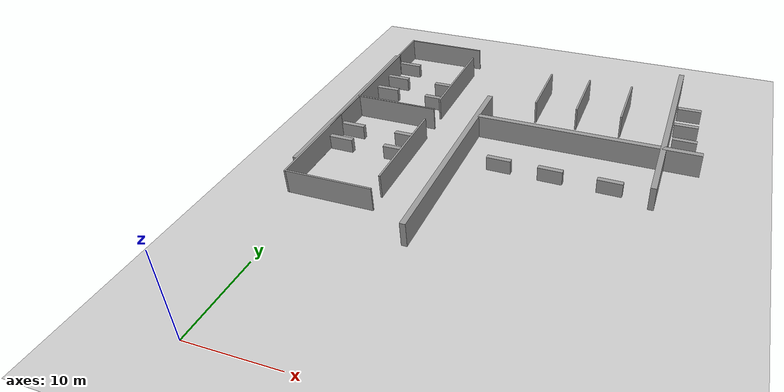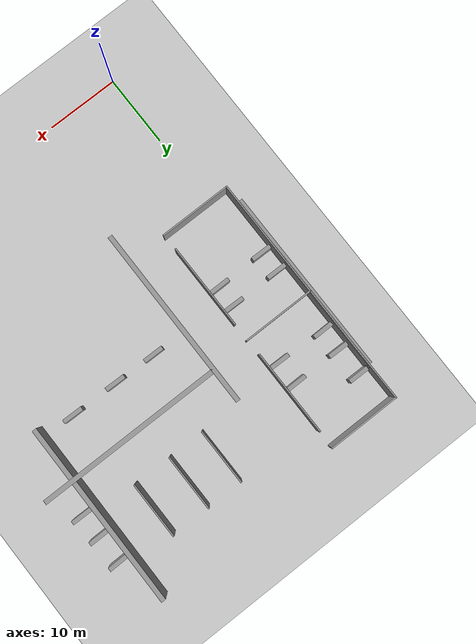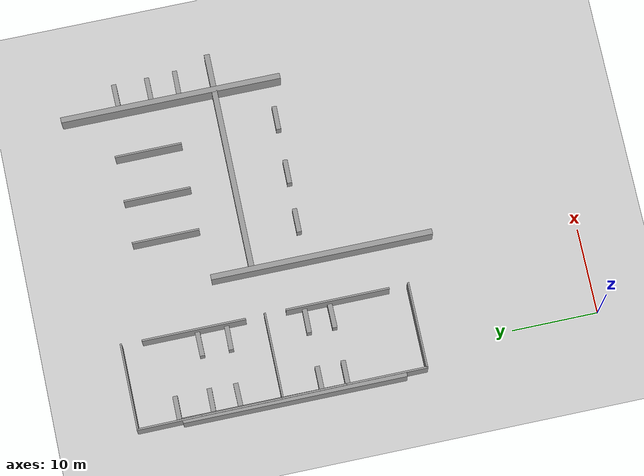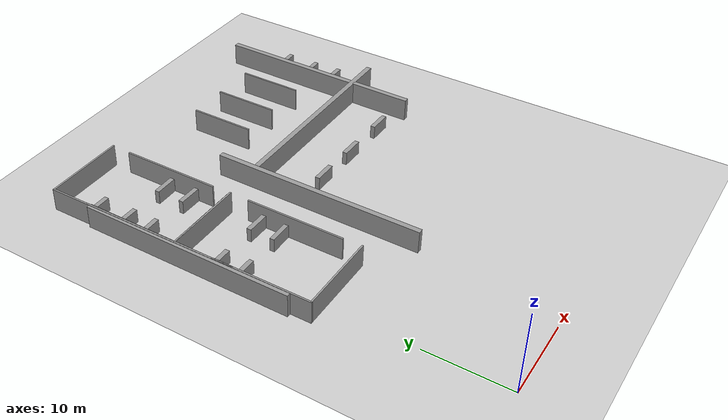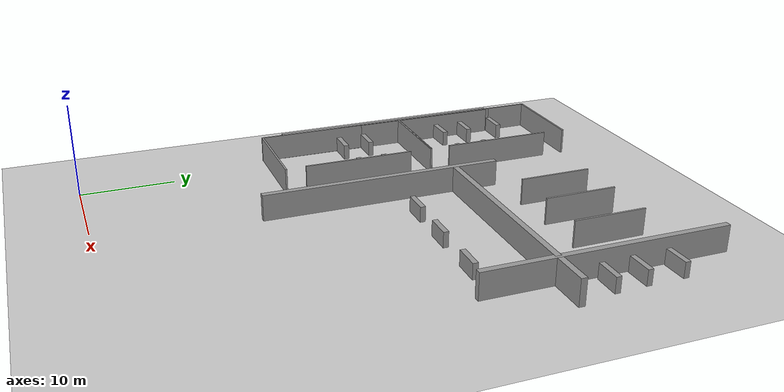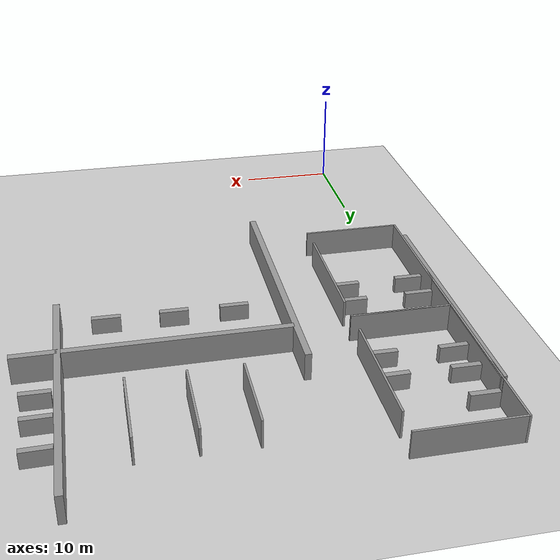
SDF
<sdf version="1.7">
 <world name="default">
  <model name="ground_plane">
   <static>1</static>
   <link name="link">
    <collision name="collision">
     <geometry><plane><normal>0 0 1</normal><size>100 100</size></plane></geometry>
     <surface><friction><ode><mu>100</mu><mu2>50</mu2></ode></friction></surface>
    </collision>
    <visual name="visual">
     <cast_shadows>0</cast_shadows>
     <geometry><plane><normal>0 0 1</normal><size>100 100</size></plane></geometry>
     <material>
      <script><uri>file://media/materials/scripts/gazebo.material</uri><name>Gazebo/Grey</name></script>
     </material>
    </visual>
   </link>
  </model>
  <model name="grew_wall_long_vertial_0">
   <model name="grey_wall_long">
    <link name="link">
     <pose>0 0 1.37589 0 -0 0</pose>
     <inertial>
      <inertia><ixx>0</ixx><ixy>0</ixy><ixz>0</ixz><iyy>0</iyy><iyz>0</iyz><izz>0</izz></inertia>
      <mass>0</mass>
     </inertial>
     <visual name="visual">
      <cast_shadows>0</cast_shadows>
      <geometry><box><size>25.8815 0.642976 2.8</size></box></geometry>
      <material>
       <script>
        <uri>model://grey_wall/materials/scripts</uri>
        <uri>model://grey_wall/materials/textures</uri>
        <name>vrc/grey_wall</name>
       </script>
       <shader type="pixel"><normal_map>__default__</normal_map></shader>
       <ambient>1 1 1 1</ambient>
       <diffuse>1 1 1 1</diffuse>
       <specular>0 0 0 1</specular>
       <emissive>0 0 0 1</emissive>
      </material>
     </visual>
     <collision name="collision">
      <geometry><box><size>25.8815 0.642976 2.8</size></box></geometry>
      <surface>
       <friction>
        <ode><mu>1</mu><mu2>1</mu2><fdir1>0 0 0</fdir1><slip1>0</slip1><slip2>0</slip2></ode>
        <torsional>
         <coefficient>1</coefficient>
         <patch_radius>0</patch_radius>
         <surface_radius>0</surface_radius>
         <use_patch_radius>1</use_patch_radius>
         <ode><slip>0</slip></ode>
        </torsional>
       </friction>
       <bounce><restitution_coefficient>0</restitution_coefficient><threshold>1e+06</threshold></bounce>
       <contact>
        <collide_without_contact>0</collide_without_contact>
        <collide_without_contact_bitmask>1</collide_without_contact_bitmask>
        <collide_bitmask>1</collide_bitmask>
        <ode>
         <soft_cfm>0</soft_cfm>
         <soft_erp>0.2</soft_erp>
         <kp>1e+13</kp>
         <kd>1</kd>
         <max_vel>0.01</max_vel>
         <min_depth>0</min_depth>
        </ode>
        <bullet>
         <split_impulse>1</split_impulse>
         <split_impulse_penetration_threshold>-0.01</split_impulse_penetration_threshold>
         <soft_cfm>0</soft_cfm>
         <soft_erp>0.2</soft_erp>
         <kp>1e+13</kp>
         <kd>1</kd>
        </bullet>
       </contact>
      </surface>
     </collision>
    </link>
    <static>1</static>
    <pose>1e-06 -0 0 0 -0 1.57003</pose>
   </model>
   <static>0</static>
   <pose>-2.79602 36.045 0 0 -0 0</pose>
  </model>
  <model name="jiaoshi_clone">
   <model name="grey_wall">
    <static>1</static>
    <link name="link">
     <pose>0 0 1.4 0 -0 0</pose>
     <collision name="collision"><geometry><box><size>7.5 0.2 2.8</size></box></geometry></collision>
     <visual name="visual">
      <cast_shadows>0</cast_shadows>
      <geometry><box><size>7.5 0.2 2.8</size></box></geometry>
      <material>
       <script>
        <uri>model://grey_wall/materials/scripts</uri>
        <uri>model://grey_wall/materials/textures</uri>
        <name>vrc/grey_wall</name>
       </script>
      </material>
     </visual>
    </link>
    <pose>-3.38172 4.2623 0 0 0 -1.56473</pose>
   </model>
   <model name="grey_wall_10m">
    <link name="link">
     <pose>1.25079 -0.023082 1.4 0 -0 0</pose>
     <inertial>
      <inertia><ixx>0</ixx><ixy>0</ixy><ixz>0</ixz><iyy>0</iyy><iyz>0</iyz><izz>0</izz></inertia>
      <mass>0</mass>
     </inertial>
     <visual name="visual">
      <cast_shadows>0</cast_shadows>
      <geometry><box><size>10.0157 0.2 2.8</size></box></geometry>
      <material>
       <script>
        <uri>model://grey_wall/materials/scripts</uri>
        <uri>model://grey_wall/materials/textures</uri>
        <name>vrc/grey_wall</name>
       </script>
       <shader type="pixel"/>
       <ambient>1 1 1 1</ambient>
       <diffuse>1 1 1 1</diffuse>
       <specular>0 0 0 1</specular>
       <emissive>0 0 0 1</emissive>
      </material>
     </visual>
     <collision name="collision">
      <geometry><box><size>10.0157 0.2 2.8</size></box></geometry>
      <surface>
       <friction>
        <ode><mu>1</mu><mu2>1</mu2><fdir1>0 0 0</fdir1><slip1>0</slip1><slip2>0</slip2></ode>
        <torsional>
         <coefficient>1</coefficient>
         <patch_radius>0</patch_radius>
         <surface_radius>0</surface_radius>
         <use_patch_radius>1</use_patch_radius>
         <ode><slip>0</slip></ode>
        </torsional>
       </friction>
       <bounce><restitution_coefficient>0</restitution_coefficient><threshold>1e+06</threshold></bounce>
       <contact>
        <collide_without_contact>0</collide_without_contact>
        <collide_without_contact_bitmask>1</collide_without_contact_bitmask>
        <collide_bitmask>1</collide_bitmask>
        <ode>
         <soft_cfm>0</soft_cfm>
         <soft_erp>0.2</soft_erp>
         <kp>1e+13</kp>
         <kd>1</kd>
         <max_vel>0.01</max_vel>
         <min_depth>0</min_depth>
        </ode>
        <bullet>
         <split_impulse>1</split_impulse>
         <split_impulse_penetration_threshold>-0.01</split_impulse_penetration_threshold>
         <soft_cfm>0</soft_cfm>
         <soft_erp>0.2</soft_erp>
         <kp>1e+13</kp>
         <kd>1</kd>
        </bullet>
       </contact>
      </surface>
     </collision>
    </link>
    <static>1</static>
    <pose>0.433183 -8.77625 0 0 -0 0</pose>
   </model>
   <model name="grey_wall_10m_0">
    <link name="link">
     <pose>1.25079 -0.023082 1.4 0 -0 0</pose>
     <inertial>
      <inertia><ixx>0</ixx><ixy>0</ixy><ixz>0</ixz><iyy>0</iyy><iyz>0</iyz><izz>0</izz></inertia>
      <mass>0</mass>
     </inertial>
     <visual name="visual">
      <cast_shadows>0</cast_shadows>
      <geometry><box><size>10.0157 0.2 2.8</size></box></geometry>
      <material>
       <script>
        <uri>model://grey_wall/materials/scripts</uri>
        <uri>model://grey_wall/materials/textures</uri>
        <name>vrc/grey_wall</name>
       </script>
       <shader type="pixel"/>
       <ambient>1 1 1 1</ambient>
       <diffuse>1 1 1 1</diffuse>
       <specular>0 0 0 1</specular>
       <emissive>0 0 0 1</emissive>
      </material>
     </visual>
     <collision name="collision">
      <geometry><box><size>10.0157 0.2 2.8</size></box></geometry>
      <surface>
       <friction>
        <ode><mu>1</mu><mu2>1</mu2><fdir1>0 0 0</fdir1><slip1>0</slip1><slip2>0</slip2></ode>
        <torsional>
         <coefficient>1</coefficient>
         <patch_radius>0</patch_radius>
         <surface_radius>0</surface_radius>
         <use_patch_radius>1</use_patch_radius>
         <ode><slip>0</slip></ode>
        </torsional>
       </friction>
       <bounce><restitution_coefficient>0</restitution_coefficient><threshold>1e+06</threshold></bounce>
       <contact>
        <collide_without_contact>0</collide_without_contact>
        <collide_without_contact_bitmask>1</collide_without_contact_bitmask>
        <collide_bitmask>1</collide_bitmask>
        <ode>
         <soft_cfm>0</soft_cfm>
         <soft_erp>0.2</soft_erp>
         <kp>1e+13</kp>
         <kd>1</kd>
         <max_vel>0.01</max_vel>
         <min_depth>0</min_depth>
        </ode>
        <bullet>
         <split_impulse>1</split_impulse>
         <split_impulse_penetration_threshold>-0.01</split_impulse_penetration_threshold>
         <soft_cfm>0</soft_cfm>
         <soft_erp>0.2</soft_erp>
         <kp>1e+13</kp>
         <kd>1</kd>
        </bullet>
       </contact>
      </surface>
     </collision>
    </link>
    <static>1</static>
    <pose>0.377364 7.92573 0 0 -0 0</pose>
   </model>
   <model name="grey_wall_12m_vertial">
    <link name="link">
     <pose>0.289112 -0.003891 1.4 0 0 -1.5701</pose>
     <inertial>
      <inertia><ixx>0</ixx><ixy>0</ixy><ixz>0</ixz><iyy>0</iyy><iyz>0</iyz><izz>0</izz></inertia>
      <mass>0</mass>
     </inertial>
     <visual name="visual">
      <cast_shadows>0</cast_shadows>
      <geometry><box><size>12.0527 0.2 2.8</size></box></geometry>
      <material>
       <script>
        <uri>model://grey_wall/materials/scripts</uri>
        <uri>model://grey_wall/materials/textures</uri>
        <name>vrc/grey_wall</name>
       </script>
       <shader type="pixel"/>
       <ambient>1 1 1 1</ambient>
       <diffuse>1 1 1 1</diffuse>
       <specular>0 0 0 1</specular>
       <emissive>0 0 0 1</emissive>
      </material>
     </visual>
     <collision name="collision">
      <geometry><box><size>12.0527 0.2 2.8</size></box></geometry>
      <surface>
       <friction>
        <ode><mu>1</mu><mu2>1</mu2><fdir1>0 0 0</fdir1><slip1>0</slip1><slip2>0</slip2></ode>
        <torsional>
         <coefficient>1</coefficient>
         <patch_radius>0</patch_radius>
         <surface_radius>0</surface_radius>
         <use_patch_radius>1</use_patch_radius>
         <ode><slip>0</slip></ode>
        </torsional>
       </friction>
       <bounce><restitution_coefficient>0</restitution_coefficient><threshold>1e+06</threshold></bounce>
       <contact>
        <collide_without_contact>0</collide_without_contact>
        <collide_without_contact_bitmask>1</collide_without_contact_bitmask>
        <collide_bitmask>1</collide_bitmask>
        <ode>
         <soft_cfm>0</soft_cfm>
         <soft_erp>0.2</soft_erp>
         <kp>1e+13</kp>
         <kd>1</kd>
         <max_vel>0.01</max_vel>
         <min_depth>0</min_depth>
        </ode>
        <bullet>
         <split_impulse>1</split_impulse>
         <split_impulse_penetration_threshold>-0.01</split_impulse_penetration_threshold>
         <soft_cfm>0</soft_cfm>
         <soft_erp>0.2</soft_erp>
         <kp>1e+13</kp>
         <kd>1</kd>
        </bullet>
       </contact>
      </surface>
     </collision>
    </link>
    <static>1</static>
    <pose>-3.63668 -2.87268 0 0 -0 0</pose>
   </model>
   <model name="grey_wall_12m_vertial_0">
    <link name="link">
     <pose>0.289112 -0.003891 1.4 0 0 -1.5701</pose>
     <inertial>
      <inertia><ixx>0</ixx><ixy>0</ixy><ixz>0</ixz><iyy>0</iyy><iyz>0</iyz><izz>0</izz></inertia>
      <mass>0</mass>
     </inertial>
     <visual name="visual">
      <cast_shadows>0</cast_shadows>
      <geometry><box><size>12.0527 0.2 2.8</size></box></geometry>
      <material>
       <script>
        <uri>model://grey_wall/materials/scripts</uri>
        <uri>model://grey_wall/materials/textures</uri>
        <name>vrc/grey_wall</name>
       </script>
       <shader type="pixel"/>
       <ambient>1 1 1 1</ambient>
       <diffuse>1 1 1 1</diffuse>
       <specular>0 0 0 1</specular>
       <emissive>0 0 0 1</emissive>
      </material>
     </visual>
     <collision name="collision">
      <geometry><box><size>12.0527 0.2 2.8</size></box></geometry>
      <surface>
       <friction>
        <ode><mu>1</mu><mu2>1</mu2><fdir1>0 0 0</fdir1><slip1>0</slip1><slip2>0</slip2></ode>
        <torsional>
         <coefficient>1</coefficient>
         <patch_radius>0</patch_radius>
         <surface_radius>0</surface_radius>
         <use_patch_radius>1</use_patch_radius>
         <ode><slip>0</slip></ode>
        </torsional>
       </friction>
       <bounce><restitution_coefficient>0</restitution_coefficient><threshold>1e+06</threshold></bounce>
       <contact>
        <collide_without_contact>0</collide_without_contact>
        <collide_without_contact_bitmask>1</collide_without_contact_bitmask>
        <collide_bitmask>1</collide_bitmask>
        <ode>
         <soft_cfm>0</soft_cfm>
         <soft_erp>0.2</soft_erp>
         <kp>1e+13</kp>
         <kd>1</kd>
         <max_vel>0.01</max_vel>
         <min_depth>0</min_depth>
        </ode>
        <bullet>
         <split_impulse>1</split_impulse>
         <split_impulse_penetration_threshold>-0.01</split_impulse_penetration_threshold>
         <soft_cfm>0</soft_cfm>
         <soft_erp>0.2</soft_erp>
         <kp>1e+13</kp>
         <kd>1</kd>
        </bullet>
       </contact>
      </surface>
     </collision>
    </link>
    <static>1</static>
    <pose>6.20786 -0.539083 0 0 -0 0</pose>
   </model>
   <static>0</static>
   <pose>0.77997 29.5098 0 0 -0 0</pose>
  </model>
  <model name="jiaoshi_clone_clone">
   <model name="grey_wall">
    <static>1</static>
    <link name="link">
     <pose>0 0 1.4 0 -0 0</pose>
     <collision name="collision"><geometry><box><size>7.5 0.2 2.8</size></box></geometry></collision>
     <visual name="visual">
      <cast_shadows>0</cast_shadows>
      <geometry><box><size>7.5 0.2 2.8</size></box></geometry>
      <material>
       <script>
        <uri>model://grey_wall/materials/scripts</uri>
        <uri>model://grey_wall/materials/textures</uri>
        <name>vrc/grey_wall</name>
       </script>
      </material>
     </visual>
    </link>
    <pose>-3.38172 4.2623 0 0 0 -1.56473</pose>
   </model>
   <model name="grey_wall_10m">
    <link name="link">
     <pose>1.25079 -0.023082 1.4 0 -0 0</pose>
     <inertial>
      <inertia><ixx>0</ixx><ixy>0</ixy><ixz>0</ixz><iyy>0</iyy><iyz>0</iyz><izz>0</izz></inertia>
      <mass>0</mass>
     </inertial>
     <visual name="visual">
      <cast_shadows>0</cast_shadows>
      <geometry><box><size>10.0157 0.2 2.8</size></box></geometry>
      <material>
       <script>
        <uri>model://grey_wall/materials/scripts</uri>
        <uri>model://grey_wall/materials/textures</uri>
        <name>vrc/grey_wall</name>
       </script>
       <shader type="pixel"/>
       <ambient>1 1 1 1</ambient>
       <diffuse>1 1 1 1</diffuse>
       <specular>0 0 0 1</specular>
       <emissive>0 0 0 1</emissive>
      </material>
     </visual>
     <collision name="collision">
      <geometry><box><size>10.0157 0.2 2.8</size></box></geometry>
      <surface>
       <friction>
        <ode><mu>1</mu><mu2>1</mu2><fdir1>0 0 0</fdir1><slip1>0</slip1><slip2>0</slip2></ode>
        <torsional>
         <coefficient>1</coefficient>
         <patch_radius>0</patch_radius>
         <surface_radius>0</surface_radius>
         <use_patch_radius>1</use_patch_radius>
         <ode><slip>0</slip></ode>
        </torsional>
       </friction>
       <bounce><restitution_coefficient>0</restitution_coefficient><threshold>1e+06</threshold></bounce>
       <contact>
        <collide_without_contact>0</collide_without_contact>
        <collide_without_contact_bitmask>1</collide_without_contact_bitmask>
        <collide_bitmask>1</collide_bitmask>
        <ode>
         <soft_cfm>0</soft_cfm>
         <soft_erp>0.2</soft_erp>
         <kp>1e+13</kp>
         <kd>1</kd>
         <max_vel>0.01</max_vel>
         <min_depth>0</min_depth>
        </ode>
        <bullet>
         <split_impulse>1</split_impulse>
         <split_impulse_penetration_threshold>-0.01</split_impulse_penetration_threshold>
         <soft_cfm>0</soft_cfm>
         <soft_erp>0.2</soft_erp>
         <kp>1e+13</kp>
         <kd>1</kd>
        </bullet>
       </contact>
      </surface>
     </collision>
    </link>
    <static>1</static>
    <pose>0.433183 -8.77625 0 0 -0 0</pose>
   </model>
   <model name="grey_wall_10m_0">
    <link name="link">
     <pose>1.25079 -0.023082 1.4 0 -0 0</pose>
     <inertial>
      <inertia><ixx>0</ixx><ixy>0</ixy><ixz>0</ixz><iyy>0</iyy><iyz>0</iyz><izz>0</izz></inertia>
      <mass>0</mass>
     </inertial>
     <visual name="visual">
      <cast_shadows>0</cast_shadows>
      <geometry><box><size>10.0157 0.2 2.8</size></box></geometry>
      <material>
       <script>
        <uri>model://grey_wall/materials/scripts</uri>
        <uri>model://grey_wall/materials/textures</uri>
        <name>vrc/grey_wall</name>
       </script>
       <shader type="pixel"/>
       <ambient>1 1 1 1</ambient>
       <diffuse>1 1 1 1</diffuse>
       <specular>0 0 0 1</specular>
       <emissive>0 0 0 1</emissive>
      </material>
     </visual>
     <collision name="collision">
      <geometry><box><size>10.0157 0.2 2.8</size></box></geometry>
      <surface>
       <friction>
        <ode><mu>1</mu><mu2>1</mu2><fdir1>0 0 0</fdir1><slip1>0</slip1><slip2>0</slip2></ode>
        <torsional>
         <coefficient>1</coefficient>
         <patch_radius>0</patch_radius>
         <surface_radius>0</surface_radius>
         <use_patch_radius>1</use_patch_radius>
         <ode><slip>0</slip></ode>
        </torsional>
       </friction>
       <bounce><restitution_coefficient>0</restitution_coefficient><threshold>1e+06</threshold></bounce>
       <contact>
        <collide_without_contact>0</collide_without_contact>
        <collide_without_contact_bitmask>1</collide_without_contact_bitmask>
        <collide_bitmask>1</collide_bitmask>
        <ode>
         <soft_cfm>0</soft_cfm>
         <soft_erp>0.2</soft_erp>
         <kp>1e+13</kp>
         <kd>1</kd>
         <max_vel>0.01</max_vel>
         <min_depth>0</min_depth>
        </ode>
        <bullet>
         <split_impulse>1</split_impulse>
         <split_impulse_penetration_threshold>-0.01</split_impulse_penetration_threshold>
         <soft_cfm>0</soft_cfm>
         <soft_erp>0.2</soft_erp>
         <kp>1e+13</kp>
         <kd>1</kd>
        </bullet>
       </contact>
      </surface>
     </collision>
    </link>
    <static>1</static>
    <pose>0.377364 7.92573 0 0 -0 0</pose>
   </model>
   <model name="grey_wall_12m_vertial">
    <link name="link">
     <pose>0.289112 -0.003891 1.4 0 0 -1.5701</pose>
     <inertial>
      <inertia><ixx>0</ixx><ixy>0</ixy><ixz>0</ixz><iyy>0</iyy><iyz>0</iyz><izz>0</izz></inertia>
      <mass>0</mass>
     </inertial>
     <visual name="visual">
      <cast_shadows>0</cast_shadows>
      <geometry><box><size>12.0527 0.2 2.8</size></box></geometry>
      <material>
       <script>
        <uri>model://grey_wall/materials/scripts</uri>
        <uri>model://grey_wall/materials/textures</uri>
        <name>vrc/grey_wall</name>
       </script>
       <shader type="pixel"/>
       <ambient>1 1 1 1</ambient>
       <diffuse>1 1 1 1</diffuse>
       <specular>0 0 0 1</specular>
       <emissive>0 0 0 1</emissive>
      </material>
     </visual>
     <collision name="collision">
      <geometry><box><size>12.0527 0.2 2.8</size></box></geometry>
      <surface>
       <friction>
        <ode><mu>1</mu><mu2>1</mu2><fdir1>0 0 0</fdir1><slip1>0</slip1><slip2>0</slip2></ode>
        <torsional>
         <coefficient>1</coefficient>
         <patch_radius>0</patch_radius>
         <surface_radius>0</surface_radius>
         <use_patch_radius>1</use_patch_radius>
         <ode><slip>0</slip></ode>
        </torsional>
       </friction>
       <bounce><restitution_coefficient>0</restitution_coefficient><threshold>1e+06</threshold></bounce>
       <contact>
        <collide_without_contact>0</collide_without_contact>
        <collide_without_contact_bitmask>1</collide_without_contact_bitmask>
        <collide_bitmask>1</collide_bitmask>
        <ode>
         <soft_cfm>0</soft_cfm>
         <soft_erp>0.2</soft_erp>
         <kp>1e+13</kp>
         <kd>1</kd>
         <max_vel>0.01</max_vel>
         <min_depth>0</min_depth>
        </ode>
        <bullet>
         <split_impulse>1</split_impulse>
         <split_impulse_penetration_threshold>-0.01</split_impulse_penetration_threshold>
         <soft_cfm>0</soft_cfm>
         <soft_erp>0.2</soft_erp>
         <kp>1e+13</kp>
         <kd>1</kd>
        </bullet>
       </contact>
      </surface>
     </collision>
    </link>
    <static>1</static>
    <pose>-3.63668 -2.87268 0 0 -0 0</pose>
   </model>
   <model name="grey_wall_12m_vertial_0">
    <link name="link">
     <pose>0.289112 -0.003891 1.4 0 0 -1.5701</pose>
     <inertial>
      <inertia><ixx>0</ixx><ixy>0</ixy><ixz>0</ixz><iyy>0</iyy><iyz>0</iyz><izz>0</izz></inertia>
      <mass>0</mass>
     </inertial>
     <visual name="visual">
      <cast_shadows>0</cast_shadows>
      <geometry><box><size>12.0527 0.2 2.8</size></box></geometry>
      <material>
       <script>
        <uri>model://grey_wall/materials/scripts</uri>
        <uri>model://grey_wall/materials/textures</uri>
        <name>vrc/grey_wall</name>
       </script>
       <shader type="pixel"/>
       <ambient>1 1 1 1</ambient>
       <diffuse>1 1 1 1</diffuse>
       <specular>0 0 0 1</specular>
       <emissive>0 0 0 1</emissive>
      </material>
     </visual>
     <collision name="collision">
      <geometry><box><size>12.0527 0.2 2.8</size></box></geometry>
      <surface>
       <friction>
        <ode><mu>1</mu><mu2>1</mu2><fdir1>0 0 0</fdir1><slip1>0</slip1><slip2>0</slip2></ode>
        <torsional>
         <coefficient>1</coefficient>
         <patch_radius>0</patch_radius>
         <surface_radius>0</surface_radius>
         <use_patch_radius>1</use_patch_radius>
         <ode><slip>0</slip></ode>
        </torsional>
       </friction>
       <bounce><restitution_coefficient>0</restitution_coefficient><threshold>1e+06</threshold></bounce>
       <contact>
        <collide_without_contact>0</collide_without_contact>
        <collide_without_contact_bitmask>1</collide_without_contact_bitmask>
        <collide_bitmask>1</collide_bitmask>
        <ode>
         <soft_cfm>0</soft_cfm>
         <soft_erp>0.2</soft_erp>
         <kp>1e+13</kp>
         <kd>1</kd>
         <max_vel>0.01</max_vel>
         <min_depth>0</min_depth>
        </ode>
        <bullet>
         <split_impulse>1</split_impulse>
         <split_impulse_penetration_threshold>-0.01</split_impulse_penetration_threshold>
         <soft_cfm>0</soft_cfm>
         <soft_erp>0.2</soft_erp>
         <kp>1e+13</kp>
         <kd>1</kd>
        </bullet>
       </contact>
      </surface>
     </collision>
    </link>
    <static>1</static>
    <pose>6.20786 -0.539083 0 0 -0 0</pose>
   </model>
   <static>0</static>
   <pose>0.70017 46.2344 0 0 -0 0</pose>
  </model>
  <model name="grew_wall_long_vertial_1_clone">
   <model name="grey_wall_long">
    <link name="link">
     <pose>0 0 1.37589 0 -0 0</pose>
     <inertial>
      <inertia><ixx>0</ixx><ixy>0</ixy><ixz>0</ixz><iyy>0</iyy><iyz>0</iyz><izz>0</izz></inertia>
      <mass>0</mass>
     </inertial>
     <visual name="visual">
      <cast_shadows>0</cast_shadows>
      <geometry><box><size>25.8815 0.642976 2.8</size></box></geometry>
      <material>
       <script>
        <uri>model://grey_wall/materials/scripts</uri>
        <uri>model://grey_wall/materials/textures</uri>
        <name>vrc/grey_wall</name>
       </script>
       <shader type="pixel"><normal_map>__default__</normal_map></shader>
       <ambient>1 1 1 1</ambient>
       <diffuse>1 1 1 1</diffuse>
       <specular>0 0 0 1</specular>
       <emissive>0 0 0 1</emissive>
      </material>
     </visual>
     <collision name="collision">
      <geometry><box><size>25.8815 0.642976 2.8</size></box></geometry>
      <surface>
       <friction>
        <ode><mu>1</mu><mu2>1</mu2><fdir1>0 0 0</fdir1><slip1>0</slip1><slip2>0</slip2></ode>
        <torsional>
         <coefficient>1</coefficient>
         <patch_radius>0</patch_radius>
         <surface_radius>0</surface_radius>
         <use_patch_radius>1</use_patch_radius>
         <ode><slip>0</slip></ode>
        </torsional>
       </friction>
       <bounce><restitution_coefficient>0</restitution_coefficient><threshold>1e+06</threshold></bounce>
       <contact>
        <collide_without_contact>0</collide_without_contact>
        <collide_without_contact_bitmask>1</collide_without_contact_bitmask>
        <collide_bitmask>1</collide_bitmask>
        <ode>
         <soft_cfm>0</soft_cfm>
         <soft_erp>0.2</soft_erp>
         <kp>1e+13</kp>
         <kd>1</kd>
         <max_vel>0.01</max_vel>
         <min_depth>0</min_depth>
        </ode>
        <bullet>
         <split_impulse>1</split_impulse>
         <split_impulse_penetration_threshold>-0.01</split_impulse_penetration_threshold>
         <soft_cfm>0</soft_cfm>
         <soft_erp>0.2</soft_erp>
         <kp>1e+13</kp>
         <kd>1</kd>
        </bullet>
       </contact>
      </surface>
     </collision>
    </link>
    <static>1</static>
    <pose>1e-06 -0 0 0 -0 1.57003</pose>
   </model>
   <static>0</static>
   <pose>12.767 29.6479 0 0 -0 0</pose>
  </model>
  <model name="grew_wall_long_vertial_1_clone_clone">
   <model name="grey_wall_long">
    <link name="link">
     <pose>0 0 1.37589 0 -0 0</pose>
     <inertial>
      <inertia><ixx>0</ixx><ixy>0</ixy><ixz>0</ixz><iyy>0</iyy><iyz>0</iyz><izz>0</izz></inertia>
      <mass>0</mass>
     </inertial>
     <visual name="visual">
      <cast_shadows>0</cast_shadows>
      <geometry><box><size>25.8815 0.642976 2.8</size></box></geometry>
      <material>
       <script>
        <uri>model://grey_wall/materials/scripts</uri>
        <uri>model://grey_wall/materials/textures</uri>
        <name>vrc/grey_wall</name>
       </script>
       <shader type="pixel"><normal_map>__default__</normal_map></shader>
       <ambient>1 1 1 1</ambient>
       <diffuse>1 1 1 1</diffuse>
       <specular>0 0 0 1</specular>
       <emissive>0 0 0 1</emissive>
      </material>
     </visual>
     <collision name="collision">
      <geometry><box><size>25.8815 0.642976 2.8</size></box></geometry>
      <surface>
       <friction>
        <ode><mu>1</mu><mu2>1</mu2><fdir1>0 0 0</fdir1><slip1>0</slip1><slip2>0</slip2></ode>
        <torsional>
         <coefficient>1</coefficient>
         <patch_radius>0</patch_radius>
         <surface_radius>0</surface_radius>
         <use_patch_radius>1</use_patch_radius>
         <ode><slip>0</slip></ode>
        </torsional>
       </friction>
       <bounce><restitution_coefficient>0</restitution_coefficient><threshold>1e+06</threshold></bounce>
       <contact>
        <collide_without_contact>0</collide_without_contact>
        <collide_without_contact_bitmask>1</collide_without_contact_bitmask>
        <collide_bitmask>1</collide_bitmask>
        <ode>
         <soft_cfm>0</soft_cfm>
         <soft_erp>0.2</soft_erp>
         <kp>1e+13</kp>
         <kd>1</kd>
         <max_vel>0.01</max_vel>
         <min_depth>0</min_depth>
        </ode>
        <bullet>
         <split_impulse>1</split_impulse>
         <split_impulse_penetration_threshold>-0.01</split_impulse_penetration_threshold>
         <soft_cfm>0</soft_cfm>
         <soft_erp>0.2</soft_erp>
         <kp>1e+13</kp>
         <kd>1</kd>
        </bullet>
       </contact>
      </surface>
     </collision>
    </link>
    <static>1</static>
    <pose>1e-06 -0 0 0 -0 1.57003</pose>
   </model>
   <static>0</static>
   <pose>34.584 42.8983 0 0 -0 0</pose>
  </model>
  <model name="unit_box">
   <pose>-1.05582 49.329 0.834396 0 -3.2e-05 -0.005693</pose>
   <link name="link">
    <inertial>
     <mass>1</mass>
     <inertia>
      <ixx>0.166667</ixx>
      <ixy>0</ixy>
      <ixz>0</ixz>
      <iyy>0.166667</iyy>
      <iyz>0</iyz>
      <izz>0.166667</izz>
     </inertia>
    </inertial>
    <collision name="collision"><geometry><box><size>2.81196 0.562598 1.66888</size></box></geometry></collision>
    <visual name="visual">
     <geometry><box><size>2.81196 0.562598 1.66888</size></box></geometry>
     <material>
      <script><name>Gazebo/Grey</name><uri>file://media/materials/scripts/gazebo.material</uri></script>
     </material>
    </visual>
   </link>
  </model>
  <model name="unit_box_clone_0">
   <pose>-0.982669 45.3601 0.834396 0 3.2e-05 -0.012779</pose>
   <link name="link">
    <inertial>
     <mass>1</mass>
     <inertia>
      <ixx>0.166667</ixx>
      <ixy>0</ixy>
      <ixz>0</ixz>
      <iyy>0.166667</iyy>
      <iyz>0</iyz>
      <izz>0.166667</izz>
     </inertia>
    </inertial>
    <collision name="collision"><geometry><box><size>2.81196 0.562598 1.66888</size></box></geometry></collision>
    <visual name="visual">
     <geometry><box><size>2.81196 0.562598 1.66888</size></box></geometry>
     <material>
      <script><name>Gazebo/Grey</name><uri>file://media/materials/scripts/gazebo.material</uri></script>
     </material>
    </visual>
   </link>
  </model>
  <model name="unit_box_clone_1">
   <pose>5.66713 45.356 0.834396 0 -3.2e-05 0.007344</pose>
   <link name="link">
    <inertial>
     <mass>1</mass>
     <inertia>
      <ixx>0.166667</ixx>
      <ixy>0</ixy>
      <ixz>0</ixz>
      <iyy>0.166667</iyy>
      <iyz>0</iyz>
      <izz>0.166667</izz>
     </inertia>
    </inertial>
    <collision name="collision"><geometry><box><size>2.81196 0.562598 1.66888</size></box></geometry></collision>
    <visual name="visual">
     <geometry><box><size>2.81196 0.562598 1.66888</size></box></geometry>
     <material>
      <script><name>Gazebo/Grey</name><uri>file://media/materials/scripts/gazebo.material</uri></script>
     </material>
    </visual>
   </link>
  </model>
  <model name="unit_box_clone_2">
   <pose>-1.03404 42.2657 0.834396 0 -3.2e-05 0.013908</pose>
   <link name="link">
    <inertial>
     <mass>1</mass>
     <inertia>
      <ixx>0.166667</ixx>
      <ixy>0</ixy>
      <ixz>0</ixz>
      <iyy>0.166667</iyy>
      <iyz>0</iyz>
      <izz>0.166667</izz>
     </inertia>
    </inertial>
    <collision name="collision"><geometry><box><size>2.81196 0.562598 1.66888</size></box></geometry></collision>
    <visual name="visual">
     <geometry><box><size>2.81196 0.562598 1.66888</size></box></geometry>
     <material>
      <script><name>Gazebo/Grey</name><uri>file://media/materials/scripts/gazebo.material</uri></script>
     </material>
    </visual>
   </link>
  </model>
  <model name="unit_box_clone_3">
   <pose>5.66576 41.9763 0.834396 0 3.2e-05 -0.013028</pose>
   <link name="link">
    <inertial>
     <mass>1</mass>
     <inertia>
      <ixx>0.166667</ixx>
      <ixy>0</ixy>
      <ixz>0</ixz>
      <iyy>0.166667</iyy>
      <iyz>0</iyz>
      <izz>0.166667</izz>
     </inertia>
    </inertial>
    <collision name="collision"><geometry><box><size>2.81196 0.562598 1.66888</size></box></geometry></collision>
    <visual name="visual">
     <geometry><box><size>2.81196 0.562598 1.66888</size></box></geometry>
     <material>
      <script><name>Gazebo/Grey</name><uri>file://media/materials/scripts/gazebo.material</uri></script>
     </material>
    </visual>
   </link>
  </model>
  <model name="unit_box_clone_4">
   <pose>-1.05556 32.8444 0.834396 -0 3.2e-05 -0.004625</pose>
   <link name="link">
    <inertial>
     <mass>1</mass>
     <inertia>
      <ixx>0.166667</ixx>
      <ixy>0</ixy>
      <ixz>0</ixz>
      <iyy>0.166667</iyy>
      <iyz>0</iyz>
      <izz>0.166667</izz>
     </inertia>
    </inertial>
    <collision name="collision"><geometry><box><size>2.81196 0.562598 1.66888</size></box></geometry></collision>
    <visual name="visual">
     <geometry><box><size>2.81196 0.562598 1.66888</size></box></geometry>
     <material>
      <script><name>Gazebo/Grey</name><uri>file://media/materials/scripts/gazebo.material</uri></script>
     </material>
    </visual>
   </link>
  </model>
  <model name="unit_box_clone_5">
   <pose>5.75375 32.8738 0.834396 0 -3.2e-05 -0.013899</pose>
   <link name="link">
    <inertial>
     <mass>1</mass>
     <inertia>
      <ixx>0.166667</ixx>
      <ixy>0</ixy>
      <ixz>0</ixz>
      <iyy>0.166667</iyy>
      <iyz>0</iyz>
      <izz>0.166667</izz>
     </inertia>
    </inertial>
    <collision name="collision"><geometry><box><size>2.81196 0.562598 1.66888</size></box></geometry></collision>
    <visual name="visual">
     <geometry><box><size>2.81196 0.562598 1.66888</size></box></geometry>
     <material>
      <script><name>Gazebo/Grey</name><uri>file://media/materials/scripts/gazebo.material</uri></script>
     </material>
    </visual>
   </link>
  </model>
  <model name="unit_box_clone_6">
   <pose>-1.00524 29.826 0.834396 0 -3.2e-05 -0.007948</pose>
   <link name="link">
    <inertial>
     <mass>1</mass>
     <inertia>
      <ixx>0.166667</ixx>
      <ixy>0</ixy>
      <ixz>0</ixz>
      <iyy>0.166667</iyy>
      <iyz>0</iyz>
      <izz>0.166667</izz>
     </inertia>
    </inertial>
    <collision name="collision"><geometry><box><size>2.81196 0.562598 1.66888</size></box></geometry></collision>
    <visual name="visual">
     <geometry><box><size>2.81196 0.562598 1.66888</size></box></geometry>
     <material>
      <script><name>Gazebo/Grey</name><uri>file://media/materials/scripts/gazebo.material</uri></script>
     </material>
    </visual>
   </link>
  </model>
  <model name="unit_box_clone_7">
   <pose>5.71603 29.918 0.834396 -0 3.2e-05 0.005855</pose>
   <link name="link">
    <inertial>
     <mass>1</mass>
     <inertia>
      <ixx>0.166667</ixx>
      <ixy>0</ixy>
      <ixz>0</ixz>
      <iyy>0.166667</iyy>
      <iyz>0</iyz>
      <izz>0.166667</izz>
     </inertia>
    </inertial>
    <collision name="collision"><geometry><box><size>2.81196 0.562598 1.66888</size></box></geometry></collision>
    <visual name="visual">
     <geometry><box><size>2.81196 0.562598 1.66888</size></box></geometry>
     <material>
      <script><name>Gazebo/Grey</name><uri>file://media/materials/scripts/gazebo.material</uri></script>
     </material>
    </visual>
   </link>
  </model>
  <model name="unit_box_clone_16">
   <pose>36.4541 49.0673 0.834396 -0 -3.2e-05 0.013885</pose>
   <link name="link">
    <inertial>
     <mass>1</mass>
     <inertia>
      <ixx>0.166667</ixx>
      <ixy>0</ixy>
      <ixz>0</ixz>
      <iyy>0.166667</iyy>
      <iyz>0</iyz>
      <izz>0.166667</izz>
     </inertia>
    </inertial>
    <collision name="collision"><geometry><box><size>2.81196 0.562598 1.66888</size></box></geometry></collision>
    <visual name="visual">
     <geometry><box><size>2.81196 0.562598 1.66888</size></box></geometry>
     <material>
      <script><name>Gazebo/Grey</name><uri>file://media/materials/scripts/gazebo.material</uri></script>
     </material>
    </visual>
   </link>
  </model>
  <model name="unit_box_clone_18">
   <pose>36.4636 45.1728 0.834396 -0 -3.2e-05 0.006643</pose>
   <link name="link">
    <inertial>
     <mass>1</mass>
     <inertia>
      <ixx>0.166667</ixx>
      <ixy>0</ixy>
      <ixz>0</ixz>
      <iyy>0.166667</iyy>
      <iyz>0</iyz>
      <izz>0.166667</izz>
     </inertia>
    </inertial>
    <collision name="collision"><geometry><box><size>2.81196 0.562598 1.66888</size></box></geometry></collision>
    <visual name="visual">
     <geometry><box><size>2.81196 0.562598 1.66888</size></box></geometry>
     <material>
      <script><name>Gazebo/Grey</name><uri>file://media/materials/scripts/gazebo.material</uri></script>
     </material>
    </visual>
   </link>
  </model>
  <model name="unit_box_clone_20">
   <pose>36.607 41.8509 0.834396 0 3.2e-05 -0.012879</pose>
   <link name="link">
    <inertial>
     <mass>1</mass>
     <inertia>
      <ixx>0.166667</ixx>
      <ixy>0</ixy>
      <ixz>0</ixz>
      <iyy>0.166667</iyy>
      <iyz>0</iyz>
      <izz>0.166667</izz>
     </inertia>
    </inertial>
    <collision name="collision"><geometry><box><size>2.81196 0.562598 1.66888</size></box></geometry></collision>
    <visual name="visual">
     <geometry><box><size>2.81196 0.562598 1.66888</size></box></geometry>
     <material>
      <script><name>Gazebo/Grey</name><uri>file://media/materials/scripts/gazebo.material</uri></script>
     </material>
    </visual>
   </link>
  </model>
  <model name="unit_box_clone_22_clone">
   <pose>17.5334 31.566 0.834396 0 -3.2e-05 -0.00795</pose>
   <link name="link">
    <inertial>
     <mass>1</mass>
     <inertia>
      <ixx>0.166667</ixx>
      <ixy>0</ixy>
      <ixz>0</ixz>
      <iyy>0.166667</iyy>
      <iyz>0</iyz>
      <izz>0.166667</izz>
     </inertia>
    </inertial>
    <collision name="collision"><geometry><box><size>2.81196 0.562598 1.66888</size></box></geometry></collision>
    <visual name="visual">
     <geometry><box><size>2.81196 0.562598 1.66888</size></box></geometry>
     <material>
      <script><name>Gazebo/Grey</name><uri>file://media/materials/scripts/gazebo.material</uri></script>
     </material>
    </visual>
   </link>
  </model>
  <model name="unit_box_clone_22_clone_clone">
   <pose>23.4437 31.448 0.834396 -0 3.2e-05 -0.013936</pose>
   <link name="link">
    <inertial>
     <mass>1</mass>
     <inertia>
      <ixx>0.166667</ixx>
      <ixy>0</ixy>
      <ixz>0</ixz>
      <iyy>0.166667</iyy>
      <iyz>0</iyz>
      <izz>0.166667</izz>
     </inertia>
    </inertial>
    <collision name="collision"><geometry><box><size>2.81196 0.562598 1.66888</size></box></geometry></collision>
    <visual name="visual">
     <geometry><box><size>2.81196 0.562598 1.66888</size></box></geometry>
     <material>
      <script><name>Gazebo/Grey</name><uri>file://media/materials/scripts/gazebo.material</uri></script>
     </material>
    </visual>
   </link>
  </model>
  <model name="unit_box_clone_22_clone_clone_0">
   <pose>29.9992 31.3631 0.834396 0 -3.2e-05 -0.013934</pose>
   <link name="link">
    <inertial>
     <mass>1</mass>
     <inertia>
      <ixx>0.166667</ixx>
      <ixy>0</ixy>
      <ixz>0</ixz>
      <iyy>0.166667</iyy>
      <iyz>0</iyz>
      <izz>0.166667</izz>
     </inertia>
    </inertial>
    <collision name="collision"><geometry><box><size>2.81196 0.562598 1.66888</size></box></geometry></collision>
    <visual name="visual">
     <geometry><box><size>2.81196 0.562598 1.66888</size></box></geometry>
     <material>
      <script><name>Gazebo/Grey</name><uri>file://media/materials/scripts/gazebo.material</uri></script>
     </material>
    </visual>
   </link>
  </model>
  <model name="grew_wall_long_vertial_1_clone_clone_5_clone_clone">
   <model name="grey_wall_long">
    <link name="link">
     <pose>0 0 1.37589 0 -0 0</pose>
     <inertial>
      <inertia><ixx>0</ixx><ixy>0</ixy><ixz>0</ixz><iyy>0</iyy><iyz>0</iyz><izz>0</izz></inertia>
      <mass>0</mass>
     </inertial>
     <visual name="visual">
      <cast_shadows>0</cast_shadows>
      <geometry><box><size>25.8815 0.642976 2.8</size></box></geometry>
      <material>
       <script>
        <uri>model://grey_wall/materials/scripts</uri>
        <uri>model://grey_wall/materials/textures</uri>
        <name>vrc/grey_wall</name>
       </script>
       <shader type="pixel"><normal_map>__default__</normal_map></shader>
       <ambient>1 1 1 1</ambient>
       <diffuse>1 1 1 1</diffuse>
       <specular>0 0 0 1</specular>
       <emissive>0 0 0 1</emissive>
      </material>
     </visual>
     <collision name="collision">
      <geometry><box><size>25.8815 0.642976 2.8</size></box></geometry>
      <surface>
       <friction>
        <ode><mu>1</mu><mu2>1</mu2><fdir1>0 0 0</fdir1><slip1>0</slip1><slip2>0</slip2></ode>
        <torsional>
         <coefficient>1</coefficient>
         <patch_radius>0</patch_radius>
         <surface_radius>0</surface_radius>
         <use_patch_radius>1</use_patch_radius>
         <ode><slip>0</slip></ode>
        </torsional>
       </friction>
       <bounce><restitution_coefficient>0</restitution_coefficient><threshold>1e+06</threshold></bounce>
       <contact>
        <collide_without_contact>0</collide_without_contact>
        <collide_without_contact_bitmask>1</collide_without_contact_bitmask>
        <collide_bitmask>1</collide_bitmask>
        <ode>
         <soft_cfm>0</soft_cfm>
         <soft_erp>0.2</soft_erp>
         <kp>1e+13</kp>
         <kd>1</kd>
         <max_vel>0.01</max_vel>
         <min_depth>0</min_depth>
        </ode>
        <bullet>
         <split_impulse>1</split_impulse>
         <split_impulse_penetration_threshold>-0.01</split_impulse_penetration_threshold>
         <soft_cfm>0</soft_cfm>
         <soft_erp>0.2</soft_erp>
         <kp>1e+13</kp>
         <kd>1</kd>
        </bullet>
       </contact>
      </surface>
     </collision>
    </link>
    <static>1</static>
    <pose>1e-06 -0 0 0 -0 1.57003</pose>
   </model>
   <static>0</static>
   <pose>25.8979 37.7851 0 0 -0 1.5707</pose>
  </model>
  <model name="grey_wall_high_clone_10">
   <link name="link">
    <pose>0.546134 -0.568384 0.521109 0 -0 0</pose>
    <inertial>
     <inertia><ixx>0</ixx><ixy>0</ixy><ixz>0</ixz><iyy>0</iyy><iyz>0</iyz><izz>0</izz></inertia>
     <mass>0</mass>
    </inertial>
    <visual name="visual">
     <cast_shadows>0</cast_shadows>
     <geometry><box><size>7.82417 0.2 4.57376</size></box></geometry>
     <material>
      <script>
       <uri>model://grey_wall/materials/scripts</uri>
       <uri>model://grey_wall/materials/textures</uri>
       <name>vrc/grey_wall</name>
      </script>
      <shader type="pixel"/>
      <ambient>1 1 1 1</ambient>
      <diffuse>1 1 1 1</diffuse>
      <specular>0 0 0 1</specular>
      <emissive>0 0 0 1</emissive>
     </material>
    </visual>
    <collision name="collision">
     <geometry><box><size>7.82417 0.2 4.57376</size></box></geometry>
     <surface>
      <friction>
       <ode><mu>1</mu><mu2>1</mu2><fdir1>0 0 0</fdir1><slip1>0</slip1><slip2>0</slip2></ode>
       <torsional>
        <coefficient>1</coefficient>
        <patch_radius>0</patch_radius>
        <surface_radius>0</surface_radius>
        <use_patch_radius>1</use_patch_radius>
        <ode><slip>0</slip></ode>
       </torsional>
      </friction>
      <bounce><restitution_coefficient>0</restitution_coefficient><threshold>1e+06</threshold></bounce>
      <contact>
       <collide_without_contact>0</collide_without_contact>
       <collide_without_contact_bitmask>1</collide_without_contact_bitmask>
       <collide_bitmask>1</collide_bitmask>
       <ode>
        <soft_cfm>0</soft_cfm>
        <soft_erp>0.2</soft_erp>
        <kp>1e+13</kp>
        <kd>1</kd>
        <max_vel>0.01</max_vel>
        <min_depth>0</min_depth>
       </ode>
       <bullet>
        <split_impulse>1</split_impulse>
        <split_impulse_penetration_threshold>-0.01</split_impulse_penetration_threshold>
        <soft_cfm>0</soft_cfm>
        <soft_erp>0.2</soft_erp>
        <kp>1e+13</kp>
        <kd>1</kd>
       </bullet>
      </contact>
     </surface>
    </collision>
   </link>
   <static>1</static>
   <pose>19.1375 47.2399 -0 0 0 -1.56746</pose>
  </model>
  <model name="grey_wall_high_clone_11">
   <link name="link">
    <pose>0.546134 -0.568384 0.521109 0 -0 0</pose>
    <inertial>
     <inertia><ixx>0</ixx><ixy>0</ixy><ixz>0</ixz><iyy>0</iyy><iyz>0</iyz><izz>0</izz></inertia>
     <mass>0</mass>
    </inertial>
    <visual name="visual">
     <cast_shadows>0</cast_shadows>
     <geometry><box><size>7.82417 0.2 4.57376</size></box></geometry>
     <material>
      <script>
       <uri>model://grey_wall/materials/scripts</uri>
       <uri>model://grey_wall/materials/textures</uri>
       <name>vrc/grey_wall</name>
      </script>
      <shader type="pixel"/>
      <ambient>1 1 1 1</ambient>
      <diffuse>1 1 1 1</diffuse>
      <specular>0 0 0 1</specular>
      <emissive>0 0 0 1</emissive>
     </material>
    </visual>
    <collision name="collision">
     <geometry><box><size>7.82417 0.2 4.57376</size></box></geometry>
     <surface>
      <friction>
       <ode><mu>1</mu><mu2>1</mu2><fdir1>0 0 0</fdir1><slip1>0</slip1><slip2>0</slip2></ode>
       <torsional>
        <coefficient>1</coefficient>
        <patch_radius>0</patch_radius>
        <surface_radius>0</surface_radius>
        <use_patch_radius>1</use_patch_radius>
        <ode><slip>0</slip></ode>
       </torsional>
      </friction>
      <bounce><restitution_coefficient>0</restitution_coefficient><threshold>1e+06</threshold></bounce>
      <contact>
       <collide_without_contact>0</collide_without_contact>
       <collide_without_contact_bitmask>1</collide_without_contact_bitmask>
       <collide_bitmask>1</collide_bitmask>
       <ode>
        <soft_cfm>0</soft_cfm>
        <soft_erp>0.2</soft_erp>
        <kp>1e+13</kp>
        <kd>1</kd>
        <max_vel>0.01</max_vel>
        <min_depth>0</min_depth>
       </ode>
       <bullet>
        <split_impulse>1</split_impulse>
        <split_impulse_penetration_threshold>-0.01</split_impulse_penetration_threshold>
        <soft_cfm>0</soft_cfm>
        <soft_erp>0.2</soft_erp>
        <kp>1e+13</kp>
        <kd>1</kd>
       </bullet>
      </contact>
     </surface>
    </collision>
   </link>
   <static>1</static>
   <pose>24.18 47.2299 -0 0 0 -1.56746</pose>
  </model>
  <model name="grey_wall_high_clone_12">
   <link name="link">
    <pose>0.546134 -0.568384 0.521109 0 -0 0</pose>
    <inertial>
     <inertia><ixx>0</ixx><ixy>0</ixy><ixz>0</ixz><iyy>0</iyy><iyz>0</iyz><izz>0</izz></inertia>
     <mass>0</mass>
    </inertial>
    <visual name="visual">
     <cast_shadows>0</cast_shadows>
     <geometry><box><size>7.82417 0.2 4.57376</size></box></geometry>
     <material>
      <script>
       <uri>model://grey_wall/materials/scripts</uri>
       <uri>model://grey_wall/materials/textures</uri>
       <name>vrc/grey_wall</name>
      </script>
      <shader type="pixel"/>
      <ambient>1 1 1 1</ambient>
      <diffuse>1 1 1 1</diffuse>
      <specular>0 0 0 1</specular>
      <emissive>0 0 0 1</emissive>
     </material>
    </visual>
    <collision name="collision">
     <geometry><box><size>7.82417 0.2 4.57376</size></box></geometry>
     <surface>
      <friction>
       <ode><mu>1</mu><mu2>1</mu2><fdir1>0 0 0</fdir1><slip1>0</slip1><slip2>0</slip2></ode>
       <torsional>
        <coefficient>1</coefficient>
        <patch_radius>0</patch_radius>
        <surface_radius>0</surface_radius>
        <use_patch_radius>1</use_patch_radius>
        <ode><slip>0</slip></ode>
       </torsional>
      </friction>
      <bounce><restitution_coefficient>0</restitution_coefficient><threshold>1e+06</threshold></bounce>
      <contact>
       <collide_without_contact>0</collide_without_contact>
       <collide_without_contact_bitmask>1</collide_without_contact_bitmask>
       <collide_bitmask>1</collide_bitmask>
       <ode>
        <soft_cfm>0</soft_cfm>
        <soft_erp>0.2</soft_erp>
        <kp>1e+13</kp>
        <kd>1</kd>
        <max_vel>0.01</max_vel>
        <min_depth>0</min_depth>
       </ode>
       <bullet>
        <split_impulse>1</split_impulse>
        <split_impulse_penetration_threshold>-0.01</split_impulse_penetration_threshold>
        <soft_cfm>0</soft_cfm>
        <soft_erp>0.2</soft_erp>
        <kp>1e+13</kp>
        <kd>1</kd>
       </bullet>
      </contact>
     </surface>
    </collision>
   </link>
   <static>1</static>
   <pose>29.5573 47.2055 -0 0 0 -1.56746</pose>
  </model>
 </world>
</sdf>
